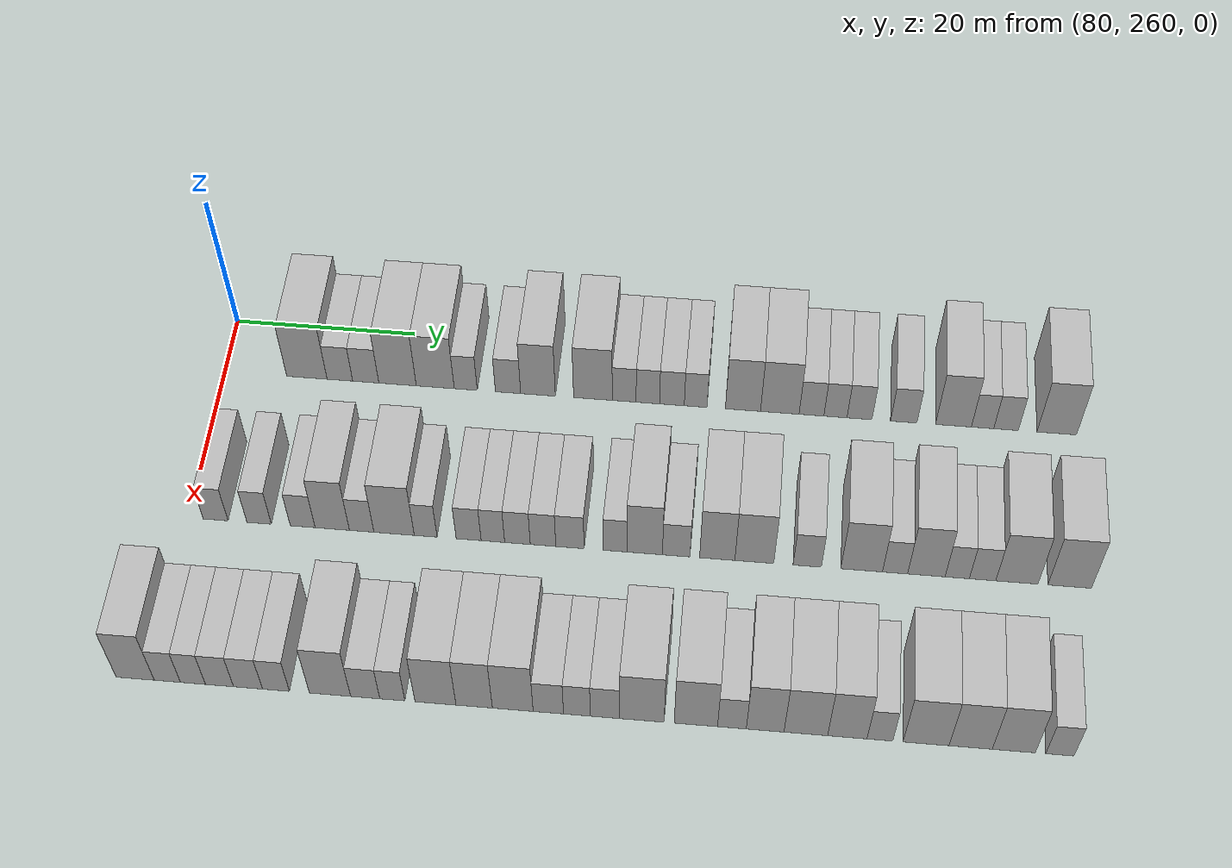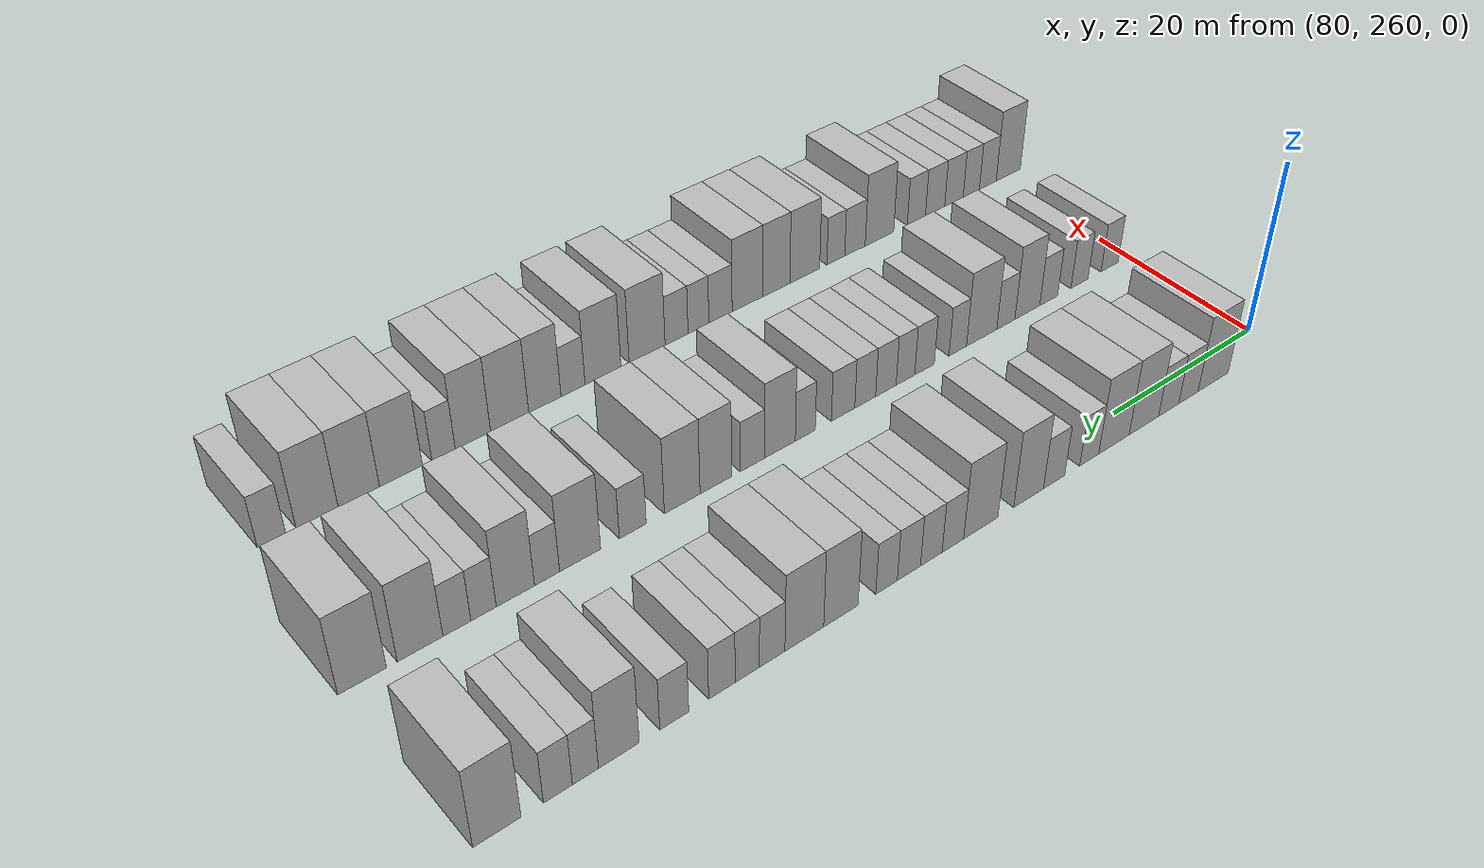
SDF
<sdf version="1.6">
 <world name="default">
  <model name="building_669">
   <static>1</static>
   <pose>82.0000 269.1235 0 0.000000 0.000000 0.000000</pose>
   <link name="link">
    <pose>0 0 4.50 0 0 0</pose>
    <collision name="collision"><geometry><box><size>10.0000 4.4842 9.0000</size></box></geometry></collision>
    <visual name="visual">
     <cast_shadows>0</cast_shadows>
     <geometry><box><size>10.0000 4.4842 9.0000</size></box></geometry>
     <material>
      <script>
       <uri>model://HANNAS_wall/materials/scripts</uri>
       <uri>model://HANNAS_wall/materials/textures</uri>
       <name>vrc/HANNAS_wall</name>
      </script>
     </material>
    </visual>
   </link>
  </model>
  <model name="building_670">
   <static>1</static>
   <pose>82.0000 272.7856 0 0.000000 0.000000 0.000000</pose>
   <link name="link">
    <pose>0 0 3.00 0 0 0</pose>
    <collision name="collision"><geometry><box><size>10.0000 2.8402 6.0000</size></box></geometry></collision>
    <visual name="visual">
     <cast_shadows>0</cast_shadows>
     <geometry><box><size>10.0000 2.8402 6.0000</size></box></geometry>
     <material>
      <script>
       <uri>model://HANNAS_wall/materials/scripts</uri>
       <uri>model://HANNAS_wall/materials/textures</uri>
       <name>vrc/HANNAS_wall</name>
      </script>
     </material>
    </visual>
   </link>
  </model>
  <model name="building_671">
   <static>1</static>
   <pose>82.0000 275.6551 0 0.000000 0.000000 0.000000</pose>
   <link name="link">
    <pose>0 0 3.00 0 0 0</pose>
    <collision name="collision"><geometry><box><size>10.0000 2.8987 6.0000</size></box></geometry></collision>
    <visual name="visual">
     <cast_shadows>0</cast_shadows>
     <geometry><box><size>10.0000 2.8987 6.0000</size></box></geometry>
     <material>
      <script>
       <uri>model://HANNAS_wall/materials/scripts</uri>
       <uri>model://HANNAS_wall/materials/textures</uri>
       <name>vrc/HANNAS_wall</name>
      </script>
     </material>
    </visual>
   </link>
  </model>
  <model name="building_672">
   <static>1</static>
   <pose>82.0000 279.1778 0 0.000000 0.000000 0.000000</pose>
   <link name="link">
    <pose>0 0 4.50 0 0 0</pose>
    <collision name="collision"><geometry><box><size>10.0000 4.1467 9.0000</size></box></geometry></collision>
    <visual name="visual">
     <cast_shadows>0</cast_shadows>
     <geometry><box><size>10.0000 4.1467 9.0000</size></box></geometry>
     <material>
      <script>
       <uri>model://HANNAS_wall/materials/scripts</uri>
       <uri>model://HANNAS_wall/materials/textures</uri>
       <name>vrc/HANNAS_wall</name>
      </script>
     </material>
    </visual>
   </link>
  </model>
  <model name="building_673">
   <static>1</static>
   <pose>82.0000 283.3461 0 0.000000 0.000000 0.000000</pose>
   <link name="link">
    <pose>0 0 4.50 0 0 0</pose>
    <collision name="collision"><geometry><box><size>10.0000 4.1898 9.0000</size></box></geometry></collision>
    <visual name="visual">
     <cast_shadows>0</cast_shadows>
     <geometry><box><size>10.0000 4.1898 9.0000</size></box></geometry>
     <material>
      <script>
       <uri>model://HANNAS_wall/materials/scripts</uri>
       <uri>model://HANNAS_wall/materials/textures</uri>
       <name>vrc/HANNAS_wall</name>
      </script>
     </material>
    </visual>
   </link>
  </model>
  <model name="building_674">
   <static>1</static>
   <pose>82.0000 286.7124 0 0.000000 0.000000 0.000000</pose>
   <link name="link">
    <pose>0 0 3.00 0 0 0</pose>
    <collision name="collision"><geometry><box><size>10.0000 2.5428 6.0000</size></box></geometry></collision>
    <visual name="visual">
     <cast_shadows>0</cast_shadows>
     <geometry><box><size>10.0000 2.5428 6.0000</size></box></geometry>
     <material>
      <script>
       <uri>model://HANNAS_wall/materials/scripts</uri>
       <uri>model://HANNAS_wall/materials/textures</uri>
       <name>vrc/HANNAS_wall</name>
      </script>
     </material>
    </visual>
   </link>
  </model>
  <model name="building_675">
   <static>1</static>
   <pose>82.0000 291.3722 0 0.000000 0.000000 0.000000</pose>
   <link name="link">
    <pose>0 0 3.00 0 0 0</pose>
    <collision name="collision"><geometry><box><size>10.0000 2.7767 6.0000</size></box></geometry></collision>
    <visual name="visual">
     <cast_shadows>0</cast_shadows>
     <geometry><box><size>10.0000 2.7767 6.0000</size></box></geometry>
     <material>
      <script>
       <uri>model://HANNAS_wall/materials/scripts</uri>
       <uri>model://HANNAS_wall/materials/textures</uri>
       <name>vrc/HANNAS_wall</name>
      </script>
     </material>
    </visual>
   </link>
  </model>
  <model name="building_676">
   <static>1</static>
   <pose>82.0000 294.6654 0 0.000000 0.000000 0.000000</pose>
   <link name="link">
    <pose>0 0 4.50 0 0 0</pose>
    <collision name="collision"><geometry><box><size>10.0000 3.8097 9.0000</size></box></geometry></collision>
    <visual name="visual">
     <cast_shadows>0</cast_shadows>
     <geometry><box><size>10.0000 3.8097 9.0000</size></box></geometry>
     <material>
      <script>
       <uri>model://HANNAS_wall/materials/scripts</uri>
       <uri>model://HANNAS_wall/materials/textures</uri>
       <name>vrc/HANNAS_wall</name>
      </script>
     </material>
    </visual>
   </link>
  </model>
  <model name="building_677">
   <static>1</static>
   <pose>82.0000 300.6858 0 0.000000 0.000000 0.000000</pose>
   <link name="link">
    <pose>0 0 4.50 0 0 0</pose>
    <collision name="collision"><geometry><box><size>10.0000 4.2310 9.0000</size></box></geometry></collision>
    <visual name="visual">
     <cast_shadows>0</cast_shadows>
     <geometry><box><size>10.0000 4.2310 9.0000</size></box></geometry>
     <material>
      <script>
       <uri>model://HANNAS_wall/materials/scripts</uri>
       <uri>model://HANNAS_wall/materials/textures</uri>
       <name>vrc/HANNAS_wall</name>
      </script>
     </material>
    </visual>
   </link>
  </model>
  <model name="building_678">
   <static>1</static>
   <pose>82.0000 304.1033 0 0.000000 0.000000 0.000000</pose>
   <link name="link">
    <pose>0 0 3.00 0 0 0</pose>
    <collision name="collision"><geometry><box><size>10.0000 2.6039 6.0000</size></box></geometry></collision>
    <visual name="visual">
     <cast_shadows>0</cast_shadows>
     <geometry><box><size>10.0000 2.6039 6.0000</size></box></geometry>
     <material>
      <script>
       <uri>model://HANNAS_wall/materials/scripts</uri>
       <uri>model://HANNAS_wall/materials/textures</uri>
       <name>vrc/HANNAS_wall</name>
      </script>
     </material>
    </visual>
   </link>
  </model>
  <model name="building_679">
   <static>1</static>
   <pose>82.0000 306.6870 0 0.000000 0.000000 0.000000</pose>
   <link name="link">
    <pose>0 0 3.00 0 0 0</pose>
    <collision name="collision"><geometry><box><size>10.0000 2.5635 6.0000</size></box></geometry></collision>
    <visual name="visual">
     <cast_shadows>0</cast_shadows>
     <geometry><box><size>10.0000 2.5635 6.0000</size></box></geometry>
     <material>
      <script>
       <uri>model://HANNAS_wall/materials/scripts</uri>
       <uri>model://HANNAS_wall/materials/textures</uri>
       <name>vrc/HANNAS_wall</name>
      </script>
     </material>
    </visual>
   </link>
  </model>
  <model name="building_680">
   <static>1</static>
   <pose>82.0000 309.3197 0 0.000000 0.000000 0.000000</pose>
   <link name="link">
    <pose>0 0 3.00 0 0 0</pose>
    <collision name="collision"><geometry><box><size>10.0000 2.7020 6.0000</size></box></geometry></collision>
    <visual name="visual">
     <cast_shadows>0</cast_shadows>
     <geometry><box><size>10.0000 2.7020 6.0000</size></box></geometry>
     <material>
      <script>
       <uri>model://HANNAS_wall/materials/scripts</uri>
       <uri>model://HANNAS_wall/materials/textures</uri>
       <name>vrc/HANNAS_wall</name>
      </script>
     </material>
    </visual>
   </link>
  </model>
  <model name="building_681">
   <static>1</static>
   <pose>82.0000 311.9095 0 0.000000 0.000000 0.000000</pose>
   <link name="link">
    <pose>0 0 3.00 0 0 0</pose>
    <collision name="collision"><geometry><box><size>10.0000 2.4776 6.0000</size></box></geometry></collision>
    <visual name="visual">
     <cast_shadows>0</cast_shadows>
     <geometry><box><size>10.0000 2.4776 6.0000</size></box></geometry>
     <material>
      <script>
       <uri>model://HANNAS_wall/materials/scripts</uri>
       <uri>model://HANNAS_wall/materials/textures</uri>
       <name>vrc/HANNAS_wall</name>
      </script>
     </material>
    </visual>
   </link>
  </model>
  <model name="building_682">
   <static>1</static>
   <pose>82.0000 317.0547 0 0.000000 0.000000 0.000000</pose>
   <link name="link">
    <pose>0 0 4.50 0 0 0</pose>
    <collision name="collision"><geometry><box><size>10.0000 3.8129 9.0000</size></box></geometry></collision>
    <visual name="visual">
     <cast_shadows>0</cast_shadows>
     <geometry><box><size>10.0000 3.8129 9.0000</size></box></geometry>
     <material>
      <script>
       <uri>model://HANNAS_wall/materials/scripts</uri>
       <uri>model://HANNAS_wall/materials/textures</uri>
       <name>vrc/HANNAS_wall</name>
      </script>
     </material>
    </visual>
   </link>
  </model>
  <model name="building_683">
   <static>1</static>
   <pose>82.0000 321.0560 0 0.000000 0.000000 0.000000</pose>
   <link name="link">
    <pose>0 0 4.50 0 0 0</pose>
    <collision name="collision"><geometry><box><size>10.0000 4.1897 9.0000</size></box></geometry></collision>
    <visual name="visual">
     <cast_shadows>0</cast_shadows>
     <geometry><box><size>10.0000 4.1897 9.0000</size></box></geometry>
     <material>
      <script>
       <uri>model://HANNAS_wall/materials/scripts</uri>
       <uri>model://HANNAS_wall/materials/textures</uri>
       <name>vrc/HANNAS_wall</name>
      </script>
     </material>
    </visual>
   </link>
  </model>
  <model name="building_684">
   <static>1</static>
   <pose>82.0000 324.4960 0 0.000000 0.000000 0.000000</pose>
   <link name="link">
    <pose>0 0 3.00 0 0 0</pose>
    <collision name="collision"><geometry><box><size>10.0000 2.6903 6.0000</size></box></geometry></collision>
    <visual name="visual">
     <cast_shadows>0</cast_shadows>
     <geometry><box><size>10.0000 2.6903 6.0000</size></box></geometry>
     <material>
      <script>
       <uri>model://HANNAS_wall/materials/scripts</uri>
       <uri>model://HANNAS_wall/materials/textures</uri>
       <name>vrc/HANNAS_wall</name>
      </script>
     </material>
    </visual>
   </link>
  </model>
  <model name="building_685">
   <static>1</static>
   <pose>82.0000 327.0920 0 0.000000 0.000000 0.000000</pose>
   <link name="link">
    <pose>0 0 3.00 0 0 0</pose>
    <collision name="collision"><geometry><box><size>10.0000 2.5016 6.0000</size></box></geometry></collision>
    <visual name="visual">
     <cast_shadows>0</cast_shadows>
     <geometry><box><size>10.0000 2.5016 6.0000</size></box></geometry>
     <material>
      <script>
       <uri>model://HANNAS_wall/materials/scripts</uri>
       <uri>model://HANNAS_wall/materials/textures</uri>
       <name>vrc/HANNAS_wall</name>
      </script>
     </material>
    </visual>
   </link>
  </model>
  <model name="building_686">
   <static>1</static>
   <pose>82.0000 329.6936 0 0.000000 0.000000 0.000000</pose>
   <link name="link">
    <pose>0 0 3.00 0 0 0</pose>
    <collision name="collision"><geometry><box><size>10.0000 2.7017 6.0000</size></box></geometry></collision>
    <visual name="visual">
     <cast_shadows>0</cast_shadows>
     <geometry><box><size>10.0000 2.7017 6.0000</size></box></geometry>
     <material>
      <script>
       <uri>model://HANNAS_wall/materials/scripts</uri>
       <uri>model://HANNAS_wall/materials/textures</uri>
       <name>vrc/HANNAS_wall</name>
      </script>
     </material>
    </visual>
   </link>
  </model>
  <model name="building_687">
   <static>1</static>
   <pose>82.0000 334.4649 0 0.000000 0.000000 0.000000</pose>
   <link name="link">
    <pose>0 0 3.00 0 0 0</pose>
    <collision name="collision"><geometry><box><size>10.0000 2.8408 6.0000</size></box></geometry></collision>
    <visual name="visual">
     <cast_shadows>0</cast_shadows>
     <geometry><box><size>10.0000 2.8408 6.0000</size></box></geometry>
     <material>
      <script>
       <uri>model://HANNAS_wall/materials/scripts</uri>
       <uri>model://HANNAS_wall/materials/textures</uri>
       <name>vrc/HANNAS_wall</name>
      </script>
     </material>
    </visual>
   </link>
  </model>
  <model name="building_688">
   <static>1</static>
   <pose>82.0000 339.8174 0 0.000000 0.000000 0.000000</pose>
   <link name="link">
    <pose>0 0 4.50 0 0 0</pose>
    <collision name="collision"><geometry><box><size>10.0000 3.8641 9.0000</size></box></geometry></collision>
    <visual name="visual">
     <cast_shadows>0</cast_shadows>
     <geometry><box><size>10.0000 3.8641 9.0000</size></box></geometry>
     <material>
      <script>
       <uri>model://HANNAS_wall/materials/scripts</uri>
       <uri>model://HANNAS_wall/materials/textures</uri>
       <name>vrc/HANNAS_wall</name>
      </script>
     </material>
    </visual>
   </link>
  </model>
  <model name="building_689">
   <static>1</static>
   <pose>82.0000 342.9503 0 0.000000 0.000000 0.000000</pose>
   <link name="link">
    <pose>0 0 3.00 0 0 0</pose>
    <collision name="collision"><geometry><box><size>10.0000 2.4017 6.0000</size></box></geometry></collision>
    <visual name="visual">
     <cast_shadows>0</cast_shadows>
     <geometry><box><size>10.0000 2.4017 6.0000</size></box></geometry>
     <material>
      <script>
       <uri>model://HANNAS_wall/materials/scripts</uri>
       <uri>model://HANNAS_wall/materials/textures</uri>
       <name>vrc/HANNAS_wall</name>
      </script>
     </material>
    </visual>
   </link>
  </model>
  <model name="building_690">
   <static>1</static>
   <pose>82.0000 345.4697 0 0.000000 0.000000 0.000000</pose>
   <link name="link">
    <pose>0 0 3.00 0 0 0</pose>
    <collision name="collision"><geometry><box><size>10.0000 2.6372 6.0000</size></box></geometry></collision>
    <visual name="visual">
     <cast_shadows>0</cast_shadows>
     <geometry><box><size>10.0000 2.6372 6.0000</size></box></geometry>
     <material>
      <script>
       <uri>model://HANNAS_wall/materials/scripts</uri>
       <uri>model://HANNAS_wall/materials/textures</uri>
       <name>vrc/HANNAS_wall</name>
      </script>
     </material>
    </visual>
   </link>
  </model>
  <model name="building_691">
   <static>1</static>
   <pose>82.0000 350.9074 0 0.000000 0.000000 0.000000</pose>
   <link name="link">
    <pose>0 0 4.50 0 0 0</pose>
    <collision name="collision"><geometry><box><size>10.0000 4.2383 9.0000</size></box></geometry></collision>
    <visual name="visual">
     <cast_shadows>0</cast_shadows>
     <geometry><box><size>10.0000 4.2383 9.0000</size></box></geometry>
     <material>
      <script>
       <uri>model://HANNAS_wall/materials/scripts</uri>
       <uri>model://HANNAS_wall/materials/textures</uri>
       <name>vrc/HANNAS_wall</name>
      </script>
     </material>
    </visual>
   </link>
  </model>
  <model name="building_840">
   <static>1</static>
   <pose>101.0000 262.8969 0 0.000000 0.000000 0.000000</pose>
   <link name="link">
    <pose>0 0 3.00 0 0 0</pose>
    <collision name="collision"><geometry><box><size>10.0000 2.6389 6.0000</size></box></geometry></collision>
    <visual name="visual">
     <cast_shadows>0</cast_shadows>
     <geometry><box><size>10.0000 2.6389 6.0000</size></box></geometry>
     <material>
      <script>
       <uri>model://HANNAS_wall/materials/scripts</uri>
       <uri>model://HANNAS_wall/materials/textures</uri>
       <name>vrc/HANNAS_wall</name>
      </script>
     </material>
    </visual>
   </link>
  </model>
  <model name="building_841">
   <static>1</static>
   <pose>101.0000 267.5106 0 0.000000 0.000000 0.000000</pose>
   <link name="link">
    <pose>0 0 3.00 0 0 0</pose>
    <collision name="collision"><geometry><box><size>10.0000 2.5886 6.0000</size></box></geometry></collision>
    <visual name="visual">
     <cast_shadows>0</cast_shadows>
     <geometry><box><size>10.0000 2.5886 6.0000</size></box></geometry>
     <material>
      <script>
       <uri>model://HANNAS_wall/materials/scripts</uri>
       <uri>model://HANNAS_wall/materials/textures</uri>
       <name>vrc/HANNAS_wall</name>
      </script>
     </material>
    </visual>
   </link>
  </model>
  <model name="building_842">
   <static>1</static>
   <pose>101.0000 272.1229 0 0.000000 0.000000 0.000000</pose>
   <link name="link">
    <pose>0 0 3.00 0 0 0</pose>
    <collision name="collision"><geometry><box><size>10.0000 2.6360 6.0000</size></box></geometry></collision>
    <visual name="visual">
     <cast_shadows>0</cast_shadows>
     <geometry><box><size>10.0000 2.6360 6.0000</size></box></geometry>
     <material>
      <script>
       <uri>model://HANNAS_wall/materials/scripts</uri>
       <uri>model://HANNAS_wall/materials/textures</uri>
       <name>vrc/HANNAS_wall</name>
      </script>
     </material>
    </visual>
   </link>
  </model>
  <model name="building_843">
   <static>1</static>
   <pose>101.0000 275.2488 0 0.000000 0.000000 0.000000</pose>
   <link name="link">
    <pose>0 0 4.50 0 0 0</pose>
    <collision name="collision"><geometry><box><size>10.0000 3.6157 9.0000</size></box></geometry></collision>
    <visual name="visual">
     <cast_shadows>0</cast_shadows>
     <geometry><box><size>10.0000 3.6157 9.0000</size></box></geometry>
     <material>
      <script>
       <uri>model://HANNAS_wall/materials/scripts</uri>
       <uri>model://HANNAS_wall/materials/textures</uri>
       <name>vrc/HANNAS_wall</name>
      </script>
     </material>
    </visual>
   </link>
  </model>
  <model name="building_844">
   <static>1</static>
   <pose>101.0000 278.3425 0 0.000000 0.000000 0.000000</pose>
   <link name="link">
    <pose>0 0 3.00 0 0 0</pose>
    <collision name="collision"><geometry><box><size>10.0000 2.5719 6.0000</size></box></geometry></collision>
    <visual name="visual">
     <cast_shadows>0</cast_shadows>
     <geometry><box><size>10.0000 2.5719 6.0000</size></box></geometry>
     <material>
      <script>
       <uri>model://HANNAS_wall/materials/scripts</uri>
       <uri>model://HANNAS_wall/materials/textures</uri>
       <name>vrc/HANNAS_wall</name>
      </script>
     </material>
    </visual>
   </link>
  </model>
  <model name="building_845">
   <static>1</static>
   <pose>101.0000 281.7511 0 0.000000 0.000000 0.000000</pose>
   <link name="link">
    <pose>0 0 4.50 0 0 0</pose>
    <collision name="collision"><geometry><box><size>10.0000 4.2452 9.0000</size></box></geometry></collision>
    <visual name="visual">
     <cast_shadows>0</cast_shadows>
     <geometry><box><size>10.0000 4.2452 9.0000</size></box></geometry>
     <material>
      <script>
       <uri>model://HANNAS_wall/materials/scripts</uri>
       <uri>model://HANNAS_wall/materials/textures</uri>
       <name>vrc/HANNAS_wall</name>
      </script>
     </material>
    </visual>
   </link>
  </model>
  <model name="building_846">
   <static>1</static>
   <pose>101.0000 285.0741 0 0.000000 0.000000 0.000000</pose>
   <link name="link">
    <pose>0 0 3.00 0 0 0</pose>
    <collision name="collision"><geometry><box><size>10.0000 2.4008 6.0000</size></box></geometry></collision>
    <visual name="visual">
     <cast_shadows>0</cast_shadows>
     <geometry><box><size>10.0000 2.4008 6.0000</size></box></geometry>
     <material>
      <script>
       <uri>model://HANNAS_wall/materials/scripts</uri>
       <uri>model://HANNAS_wall/materials/textures</uri>
       <name>vrc/HANNAS_wall</name>
      </script>
     </material>
    </visual>
   </link>
  </model>
  <model name="building_847">
   <static>1</static>
   <pose>101.0000 289.5842 0 0.000000 0.000000 0.000000</pose>
   <link name="link">
    <pose>0 0 3.00 0 0 0</pose>
    <collision name="collision"><geometry><box><size>10.0000 2.6195 6.0000</size></box></geometry></collision>
    <visual name="visual">
     <cast_shadows>0</cast_shadows>
     <geometry><box><size>10.0000 2.6195 6.0000</size></box></geometry>
     <material>
      <script>
       <uri>model://HANNAS_wall/materials/scripts</uri>
       <uri>model://HANNAS_wall/materials/textures</uri>
       <name>vrc/HANNAS_wall</name>
      </script>
     </material>
    </visual>
   </link>
  </model>
  <model name="building_848">
   <static>1</static>
   <pose>101.0000 292.1223 0 0.000000 0.000000 0.000000</pose>
   <link name="link">
    <pose>0 0 3.00 0 0 0</pose>
    <collision name="collision"><geometry><box><size>10.0000 2.4567 6.0000</size></box></geometry></collision>
    <visual name="visual">
     <cast_shadows>0</cast_shadows>
     <geometry><box><size>10.0000 2.4567 6.0000</size></box></geometry>
     <material>
      <script>
       <uri>model://HANNAS_wall/materials/scripts</uri>
       <uri>model://HANNAS_wall/materials/textures</uri>
       <name>vrc/HANNAS_wall</name>
      </script>
     </material>
    </visual>
   </link>
  </model>
  <model name="building_849">
   <static>1</static>
   <pose>101.0000 294.6892 0 0.000000 0.000000 0.000000</pose>
   <link name="link">
    <pose>0 0 3.00 0 0 0</pose>
    <collision name="collision"><geometry><box><size>10.0000 2.6772 6.0000</size></box></geometry></collision>
    <visual name="visual">
     <cast_shadows>0</cast_shadows>
     <geometry><box><size>10.0000 2.6772 6.0000</size></box></geometry>
     <material>
      <script>
       <uri>model://HANNAS_wall/materials/scripts</uri>
       <uri>model://HANNAS_wall/materials/textures</uri>
       <name>vrc/HANNAS_wall</name>
      </script>
     </material>
    </visual>
   </link>
  </model>
  <model name="building_850">
   <static>1</static>
   <pose>101.0000 297.3610 0 0.000000 0.000000 0.000000</pose>
   <link name="link">
    <pose>0 0 3.00 0 0 0</pose>
    <collision name="collision"><geometry><box><size>10.0000 2.6664 6.0000</size></box></geometry></collision>
    <visual name="visual">
     <cast_shadows>0</cast_shadows>
     <geometry><box><size>10.0000 2.6664 6.0000</size></box></geometry>
     <material>
      <script>
       <uri>model://HANNAS_wall/materials/scripts</uri>
       <uri>model://HANNAS_wall/materials/textures</uri>
       <name>vrc/HANNAS_wall</name>
      </script>
     </material>
    </visual>
   </link>
  </model>
  <model name="building_851">
   <static>1</static>
   <pose>101.0000 300.1699 0 0.000000 0.000000 0.000000</pose>
   <link name="link">
    <pose>0 0 3.00 0 0 0</pose>
    <collision name="collision"><geometry><box><size>10.0000 2.9514 6.0000</size></box></geometry></collision>
    <visual name="visual">
     <cast_shadows>0</cast_shadows>
     <geometry><box><size>10.0000 2.9514 6.0000</size></box></geometry>
     <material>
      <script>
       <uri>model://HANNAS_wall/materials/scripts</uri>
       <uri>model://HANNAS_wall/materials/textures</uri>
       <name>vrc/HANNAS_wall</name>
      </script>
     </material>
    </visual>
   </link>
  </model>
  <model name="building_852">
   <static>1</static>
   <pose>101.0000 304.8644 0 0.000000 0.000000 0.000000</pose>
   <link name="link">
    <pose>0 0 3.00 0 0 0</pose>
    <collision name="collision"><geometry><box><size>10.0000 2.4377 6.0000</size></box></geometry></collision>
    <visual name="visual">
     <cast_shadows>0</cast_shadows>
     <geometry><box><size>10.0000 2.4377 6.0000</size></box></geometry>
     <material>
      <script>
       <uri>model://HANNAS_wall/materials/scripts</uri>
       <uri>model://HANNAS_wall/materials/textures</uri>
       <name>vrc/HANNAS_wall</name>
      </script>
     </material>
    </visual>
   </link>
  </model>
  <model name="building_853">
   <static>1</static>
   <pose>101.0000 307.9319 0 0.000000 0.000000 0.000000</pose>
   <link name="link">
    <pose>0 0 4.50 0 0 0</pose>
    <collision name="collision"><geometry><box><size>10.0000 3.6973 9.0000</size></box></geometry></collision>
    <visual name="visual">
     <cast_shadows>0</cast_shadows>
     <geometry><box><size>10.0000 3.6973 9.0000</size></box></geometry>
     <material>
      <script>
       <uri>model://HANNAS_wall/materials/scripts</uri>
       <uri>model://HANNAS_wall/materials/textures</uri>
       <name>vrc/HANNAS_wall</name>
      </script>
     </material>
    </visual>
   </link>
  </model>
  <model name="building_854">
   <static>1</static>
   <pose>101.0000 311.2086 0 0.000000 0.000000 0.000000</pose>
   <link name="link">
    <pose>0 0 3.00 0 0 0</pose>
    <collision name="collision"><geometry><box><size>10.0000 2.8560 6.0000</size></box></geometry></collision>
    <visual name="visual">
     <cast_shadows>0</cast_shadows>
     <geometry><box><size>10.0000 2.8560 6.0000</size></box></geometry>
     <material>
      <script>
       <uri>model://HANNAS_wall/materials/scripts</uri>
       <uri>model://HANNAS_wall/materials/textures</uri>
       <name>vrc/HANNAS_wall</name>
      </script>
     </material>
    </visual>
   </link>
  </model>
  <model name="building_855">
   <static>1</static>
   <pose>101.0000 315.4592 0 0.000000 0.000000 0.000000</pose>
   <link name="link">
    <pose>0 0 4.50 0 0 0</pose>
    <collision name="collision"><geometry><box><size>10.0000 3.6451 9.0000</size></box></geometry></collision>
    <visual name="visual">
     <cast_shadows>0</cast_shadows>
     <geometry><box><size>10.0000 3.6451 9.0000</size></box></geometry>
     <material>
      <script>
       <uri>model://HANNAS_wall/materials/scripts</uri>
       <uri>model://HANNAS_wall/materials/textures</uri>
       <name>vrc/HANNAS_wall</name>
      </script>
     </material>
    </visual>
   </link>
  </model>
  <model name="building_856">
   <static>1</static>
   <pose>101.0000 319.2860 0 0.000000 0.000000 0.000000</pose>
   <link name="link">
    <pose>0 0 4.50 0 0 0</pose>
    <collision name="collision"><geometry><box><size>10.0000 4.0086 9.0000</size></box></geometry></collision>
    <visual name="visual">
     <cast_shadows>0</cast_shadows>
     <geometry><box><size>10.0000 4.0086 9.0000</size></box></geometry>
     <material>
      <script>
       <uri>model://HANNAS_wall/materials/scripts</uri>
       <uri>model://HANNAS_wall/materials/textures</uri>
       <name>vrc/HANNAS_wall</name>
      </script>
     </material>
    </visual>
   </link>
  </model>
  <model name="building_857">
   <static>1</static>
   <pose>101.0000 324.7450 0 0.000000 0.000000 0.000000</pose>
   <link name="link">
    <pose>0 0 3.00 0 0 0</pose>
    <collision name="collision"><geometry><box><size>10.0000 2.9094 6.0000</size></box></geometry></collision>
    <visual name="visual">
     <cast_shadows>0</cast_shadows>
     <geometry><box><size>10.0000 2.9094 6.0000</size></box></geometry>
     <material>
      <script>
       <uri>model://HANNAS_wall/materials/scripts</uri>
       <uri>model://HANNAS_wall/materials/textures</uri>
       <name>vrc/HANNAS_wall</name>
      </script>
     </material>
    </visual>
   </link>
  </model>
  <model name="building_858">
   <static>1</static>
   <pose>101.0000 330.3419 0 0.000000 0.000000 0.000000</pose>
   <link name="link">
    <pose>0 0 4.50 0 0 0</pose>
    <collision name="collision"><geometry><box><size>10.0000 4.2845 9.0000</size></box></geometry></collision>
    <visual name="visual">
     <cast_shadows>0</cast_shadows>
     <geometry><box><size>10.0000 4.2845 9.0000</size></box></geometry>
     <material>
      <script>
       <uri>model://HANNAS_wall/materials/scripts</uri>
       <uri>model://HANNAS_wall/materials/textures</uri>
       <name>vrc/HANNAS_wall</name>
      </script>
     </material>
    </visual>
   </link>
  </model>
  <model name="building_859">
   <static>1</static>
   <pose>101.0000 333.7696 0 0.000000 0.000000 0.000000</pose>
   <link name="link">
    <pose>0 0 3.00 0 0 0</pose>
    <collision name="collision"><geometry><box><size>10.0000 2.5708 6.0000</size></box></geometry></collision>
    <visual name="visual">
     <cast_shadows>0</cast_shadows>
     <geometry><box><size>10.0000 2.5708 6.0000</size></box></geometry>
     <material>
      <script>
       <uri>model://HANNAS_wall/materials/scripts</uri>
       <uri>model://HANNAS_wall/materials/textures</uri>
       <name>vrc/HANNAS_wall</name>
      </script>
     </material>
    </visual>
   </link>
  </model>
  <model name="building_860">
   <static>1</static>
   <pose>101.0000 336.9754 0 0.000000 0.000000 0.000000</pose>
   <link name="link">
    <pose>0 0 4.50 0 0 0</pose>
    <collision name="collision"><geometry><box><size>10.0000 3.8407 9.0000</size></box></geometry></collision>
    <visual name="visual">
     <cast_shadows>0</cast_shadows>
     <geometry><box><size>10.0000 3.8407 9.0000</size></box></geometry>
     <material>
      <script>
       <uri>model://HANNAS_wall/materials/scripts</uri>
       <uri>model://HANNAS_wall/materials/textures</uri>
       <name>vrc/HANNAS_wall</name>
      </script>
     </material>
    </visual>
   </link>
  </model>
  <model name="building_861">
   <static>1</static>
   <pose>101.0000 340.1360 0 0.000000 0.000000 0.000000</pose>
   <link name="link">
    <pose>0 0 3.00 0 0 0</pose>
    <collision name="collision"><geometry><box><size>10.0000 2.4805 6.0000</size></box></geometry></collision>
    <visual name="visual">
     <cast_shadows>0</cast_shadows>
     <geometry><box><size>10.0000 2.4805 6.0000</size></box></geometry>
     <material>
      <script>
       <uri>model://HANNAS_wall/materials/scripts</uri>
       <uri>model://HANNAS_wall/materials/textures</uri>
       <name>vrc/HANNAS_wall</name>
      </script>
     </material>
    </visual>
   </link>
  </model>
  <model name="building_862">
   <static>1</static>
   <pose>101.0000 342.7255 0 0.000000 0.000000 0.000000</pose>
   <link name="link">
    <pose>0 0 3.00 0 0 0</pose>
    <collision name="collision"><geometry><box><size>10.0000 2.6985 6.0000</size></box></geometry></collision>
    <visual name="visual">
     <cast_shadows>0</cast_shadows>
     <geometry><box><size>10.0000 2.6985 6.0000</size></box></geometry>
     <material>
      <script>
       <uri>model://HANNAS_wall/materials/scripts</uri>
       <uri>model://HANNAS_wall/materials/textures</uri>
       <name>vrc/HANNAS_wall</name>
      </script>
     </material>
    </visual>
   </link>
  </model>
  <model name="building_863">
   <static>1</static>
   <pose>101.0000 346.2275 0 0.000000 0.000000 0.000000</pose>
   <link name="link">
    <pose>0 0 4.50 0 0 0</pose>
    <collision name="collision"><geometry><box><size>10.0000 4.3056 9.0000</size></box></geometry></collision>
    <visual name="visual">
     <cast_shadows>0</cast_shadows>
     <geometry><box><size>10.0000 4.3056 9.0000</size></box></geometry>
     <material>
      <script>
       <uri>model://HANNAS_wall/materials/scripts</uri>
       <uri>model://HANNAS_wall/materials/textures</uri>
       <name>vrc/HANNAS_wall</name>
      </script>
     </material>
    </visual>
   </link>
  </model>
  <model name="building_864">
   <static>1</static>
   <pose>101.0000 351.5990 0 0.000000 0.000000 0.000000</pose>
   <link name="link">
    <pose>0 0 4.50 0 0 0</pose>
    <collision name="collision"><geometry><box><size>10.0000 4.4373 9.0000</size></box></geometry></collision>
    <visual name="visual">
     <cast_shadows>0</cast_shadows>
     <geometry><box><size>10.0000 4.4373 9.0000</size></box></geometry>
     <material>
      <script>
       <uri>model://HANNAS_wall/materials/scripts</uri>
       <uri>model://HANNAS_wall/materials/textures</uri>
       <name>vrc/HANNAS_wall</name>
      </script>
     </material>
    </visual>
   </link>
  </model>
  <model name="building_1011">
   <static>1</static>
   <pose>120.0000 258.7320 0 0.000000 0.000000 0.000000</pose>
   <link name="link">
    <pose>0 0 4.50 0 0 0</pose>
    <collision name="collision"><geometry><box><size>10.0000 3.8497 9.0000</size></box></geometry></collision>
    <visual name="visual">
     <cast_shadows>0</cast_shadows>
     <geometry><box><size>10.0000 3.8497 9.0000</size></box></geometry>
     <material>
      <script>
       <uri>model://HANNAS_wall/materials/scripts</uri>
       <uri>model://HANNAS_wall/materials/textures</uri>
       <name>vrc/HANNAS_wall</name>
      </script>
     </material>
    </visual>
   </link>
  </model>
  <model name="building_1012">
   <static>1</static>
   <pose>120.0000 261.9792 0 0.000000 0.000000 0.000000</pose>
   <link name="link">
    <pose>0 0 3.00 0 0 0</pose>
    <collision name="collision"><geometry><box><size>10.0000 2.6447 6.0000</size></box></geometry></collision>
    <visual name="visual">
     <cast_shadows>0</cast_shadows>
     <geometry><box><size>10.0000 2.6447 6.0000</size></box></geometry>
     <material>
      <script>
       <uri>model://HANNAS_wall/materials/scripts</uri>
       <uri>model://HANNAS_wall/materials/textures</uri>
       <name>vrc/HANNAS_wall</name>
      </script>
     </material>
    </visual>
   </link>
  </model>
  <model name="building_1013">
   <static>1</static>
   <pose>120.0000 264.5588 0 0.000000 0.000000 0.000000</pose>
   <link name="link">
    <pose>0 0 3.00 0 0 0</pose>
    <collision name="collision"><geometry><box><size>10.0000 2.5146 6.0000</size></box></geometry></collision>
    <visual name="visual">
     <cast_shadows>0</cast_shadows>
     <geometry><box><size>10.0000 2.5146 6.0000</size></box></geometry>
     <material>
      <script>
       <uri>model://HANNAS_wall/materials/scripts</uri>
       <uri>model://HANNAS_wall/materials/textures</uri>
       <name>vrc/HANNAS_wall</name>
      </script>
     </material>
    </visual>
   </link>
  </model>
  <model name="building_1014">
   <static>1</static>
   <pose>120.0000 267.2319 0 0.000000 0.000000 0.000000</pose>
   <link name="link">
    <pose>0 0 3.00 0 0 0</pose>
    <collision name="collision"><geometry><box><size>10.0000 2.8316 6.0000</size></box></geometry></collision>
    <visual name="visual">
     <cast_shadows>0</cast_shadows>
     <geometry><box><size>10.0000 2.8316 6.0000</size></box></geometry>
     <material>
      <script>
       <uri>model://HANNAS_wall/materials/scripts</uri>
       <uri>model://HANNAS_wall/materials/textures</uri>
       <name>vrc/HANNAS_wall</name>
      </script>
     </material>
    </visual>
   </link>
  </model>
  <model name="building_1015">
   <static>1</static>
   <pose>120.0000 270.0990 0 0.000000 0.000000 0.000000</pose>
   <link name="link">
    <pose>0 0 3.00 0 0 0</pose>
    <collision name="collision"><geometry><box><size>10.0000 2.9025 6.0000</size></box></geometry></collision>
    <visual name="visual">
     <cast_shadows>0</cast_shadows>
     <geometry><box><size>10.0000 2.9025 6.0000</size></box></geometry>
     <material>
      <script>
       <uri>model://HANNAS_wall/materials/scripts</uri>
       <uri>model://HANNAS_wall/materials/textures</uri>
       <name>vrc/HANNAS_wall</name>
      </script>
     </material>
    </visual>
   </link>
  </model>
  <model name="building_1016">
   <static>1</static>
   <pose>120.0000 272.9034 0 0.000000 0.000000 0.000000</pose>
   <link name="link">
    <pose>0 0 3.00 0 0 0</pose>
    <collision name="collision"><geometry><box><size>10.0000 2.7062 6.0000</size></box></geometry></collision>
    <visual name="visual">
     <cast_shadows>0</cast_shadows>
     <geometry><box><size>10.0000 2.7062 6.0000</size></box></geometry>
     <material>
      <script>
       <uri>model://HANNAS_wall/materials/scripts</uri>
       <uri>model://HANNAS_wall/materials/textures</uri>
       <name>vrc/HANNAS_wall</name>
      </script>
     </material>
    </visual>
   </link>
  </model>
  <model name="building_1017">
   <static>1</static>
   <pose>120.0000 278.3172 0 0.000000 0.000000 0.000000</pose>
   <link name="link">
    <pose>0 0 4.50 0 0 0</pose>
    <collision name="collision"><geometry><box><size>10.0000 4.1213 9.0000</size></box></geometry></collision>
    <visual name="visual">
     <cast_shadows>0</cast_shadows>
     <geometry><box><size>10.0000 4.1213 9.0000</size></box></geometry>
     <material>
      <script>
       <uri>model://HANNAS_wall/materials/scripts</uri>
       <uri>model://HANNAS_wall/materials/textures</uri>
       <name>vrc/HANNAS_wall</name>
      </script>
     </material>
    </visual>
   </link>
  </model>
  <model name="building_1018">
   <static>1</static>
   <pose>120.0000 281.8348 0 0.000000 0.000000 0.000000</pose>
   <link name="link">
    <pose>0 0 3.00 0 0 0</pose>
    <collision name="collision"><geometry><box><size>10.0000 2.9140 6.0000</size></box></geometry></collision>
    <visual name="visual">
     <cast_shadows>0</cast_shadows>
     <geometry><box><size>10.0000 2.9140 6.0000</size></box></geometry>
     <material>
      <script>
       <uri>model://HANNAS_wall/materials/scripts</uri>
       <uri>model://HANNAS_wall/materials/textures</uri>
       <name>vrc/HANNAS_wall</name>
      </script>
     </material>
    </visual>
   </link>
  </model>
  <model name="building_1019">
   <static>1</static>
   <pose>120.0000 284.5438 0 0.000000 0.000000 0.000000</pose>
   <link name="link">
    <pose>0 0 3.00 0 0 0</pose>
    <collision name="collision"><geometry><box><size>10.0000 2.5040 6.0000</size></box></geometry></collision>
    <visual name="visual">
     <cast_shadows>0</cast_shadows>
     <geometry><box><size>10.0000 2.5040 6.0000</size></box></geometry>
     <material>
      <script>
       <uri>model://HANNAS_wall/materials/scripts</uri>
       <uri>model://HANNAS_wall/materials/textures</uri>
       <name>vrc/HANNAS_wall</name>
      </script>
     </material>
    </visual>
   </link>
  </model>
  <model name="building_1020">
   <static>1</static>
   <pose>120.0000 288.8339 0 0.000000 0.000000 0.000000</pose>
   <link name="link">
    <pose>0 0 4.50 0 0 0</pose>
    <collision name="collision"><geometry><box><size>10.0000 4.0762 9.0000</size></box></geometry></collision>
    <visual name="visual">
     <cast_shadows>0</cast_shadows>
     <geometry><box><size>10.0000 4.0762 9.0000</size></box></geometry>
     <material>
      <script>
       <uri>model://HANNAS_wall/materials/scripts</uri>
       <uri>model://HANNAS_wall/materials/textures</uri>
       <name>vrc/HANNAS_wall</name>
      </script>
     </material>
    </visual>
   </link>
  </model>
  <model name="building_1021">
   <static>1</static>
   <pose>120.0000 292.6799 0 0.000000 0.000000 0.000000</pose>
   <link name="link">
    <pose>0 0 4.50 0 0 0</pose>
    <collision name="collision"><geometry><box><size>10.0000 3.6157 9.0000</size></box></geometry></collision>
    <visual name="visual">
     <cast_shadows>0</cast_shadows>
     <geometry><box><size>10.0000 3.6157 9.0000</size></box></geometry>
     <material>
      <script>
       <uri>model://HANNAS_wall/materials/scripts</uri>
       <uri>model://HANNAS_wall/materials/textures</uri>
       <name>vrc/HANNAS_wall</name>
      </script>
     </material>
    </visual>
   </link>
  </model>
  <model name="building_1022">
   <static>1</static>
   <pose>120.0000 296.5099 0 0.000000 0.000000 0.000000</pose>
   <link name="link">
    <pose>0 0 4.50 0 0 0</pose>
    <collision name="collision"><geometry><box><size>10.0000 4.0443 9.0000</size></box></geometry></collision>
    <visual name="visual">
     <cast_shadows>0</cast_shadows>
     <geometry><box><size>10.0000 4.0443 9.0000</size></box></geometry>
     <material>
      <script>
       <uri>model://HANNAS_wall/materials/scripts</uri>
       <uri>model://HANNAS_wall/materials/textures</uri>
       <name>vrc/HANNAS_wall</name>
      </script>
     </material>
    </visual>
   </link>
  </model>
  <model name="building_1023">
   <static>1</static>
   <pose>120.0000 300.0310 0 0.000000 0.000000 0.000000</pose>
   <link name="link">
    <pose>0 0 3.00 0 0 0</pose>
    <collision name="collision"><geometry><box><size>10.0000 2.9979 6.0000</size></box></geometry></collision>
    <visual name="visual">
     <cast_shadows>0</cast_shadows>
     <geometry><box><size>10.0000 2.9979 6.0000</size></box></geometry>
     <material>
      <script>
       <uri>model://HANNAS_wall/materials/scripts</uri>
       <uri>model://HANNAS_wall/materials/textures</uri>
       <name>vrc/HANNAS_wall</name>
      </script>
     </material>
    </visual>
   </link>
  </model>
  <model name="building_1024">
   <static>1</static>
   <pose>120.0000 302.8524 0 0.000000 0.000000 0.000000</pose>
   <link name="link">
    <pose>0 0 3.00 0 0 0</pose>
    <collision name="collision"><geometry><box><size>10.0000 2.6449 6.0000</size></box></geometry></collision>
    <visual name="visual">
     <cast_shadows>0</cast_shadows>
     <geometry><box><size>10.0000 2.6449 6.0000</size></box></geometry>
     <material>
      <script>
       <uri>model://HANNAS_wall/materials/scripts</uri>
       <uri>model://HANNAS_wall/materials/textures</uri>
       <name>vrc/HANNAS_wall</name>
      </script>
     </material>
    </visual>
   </link>
  </model>
  <model name="building_1025">
   <static>1</static>
   <pose>120.0000 305.6082 0 0.000000 0.000000 0.000000</pose>
   <link name="link">
    <pose>0 0 3.00 0 0 0</pose>
    <collision name="collision"><geometry><box><size>10.0000 2.8668 6.0000</size></box></geometry></collision>
    <visual name="visual">
     <cast_shadows>0</cast_shadows>
     <geometry><box><size>10.0000 2.8668 6.0000</size></box></geometry>
     <material>
      <script>
       <uri>model://HANNAS_wall/materials/scripts</uri>
       <uri>model://HANNAS_wall/materials/textures</uri>
       <name>vrc/HANNAS_wall</name>
      </script>
     </material>
    </visual>
   </link>
  </model>
  <model name="building_1026">
   <static>1</static>
   <pose>120.0000 309.2410 0 0.000000 0.000000 0.000000</pose>
   <link name="link">
    <pose>0 0 4.50 0 0 0</pose>
    <collision name="collision"><geometry><box><size>10.0000 4.3988 9.0000</size></box></geometry></collision>
    <visual name="visual">
     <cast_shadows>0</cast_shadows>
     <geometry><box><size>10.0000 4.3988 9.0000</size></box></geometry>
     <material>
      <script>
       <uri>model://HANNAS_wall/materials/scripts</uri>
       <uri>model://HANNAS_wall/materials/textures</uri>
       <name>vrc/HANNAS_wall</name>
      </script>
     </material>
    </visual>
   </link>
  </model>
  <model name="building_1027">
   <static>1</static>
   <pose>120.0000 314.5637 0 0.000000 0.000000 0.000000</pose>
   <link name="link">
    <pose>0 0 4.50 0 0 0</pose>
    <collision name="collision"><geometry><box><size>10.0000 4.2465 9.0000</size></box></geometry></collision>
    <visual name="visual">
     <cast_shadows>0</cast_shadows>
     <geometry><box><size>10.0000 4.2465 9.0000</size></box></geometry>
     <material>
      <script>
       <uri>model://HANNAS_wall/materials/scripts</uri>
       <uri>model://HANNAS_wall/materials/textures</uri>
       <name>vrc/HANNAS_wall</name>
      </script>
     </material>
    </visual>
   </link>
  </model>
  <model name="building_1028">
   <static>1</static>
   <pose>120.0000 318.0931 0 0.000000 0.000000 0.000000</pose>
   <link name="link">
    <pose>0 0 3.00 0 0 0</pose>
    <collision name="collision"><geometry><box><size>10.0000 2.8124 6.0000</size></box></geometry></collision>
    <visual name="visual">
     <cast_shadows>0</cast_shadows>
     <geometry><box><size>10.0000 2.8124 6.0000</size></box></geometry>
     <material>
      <script>
       <uri>model://HANNAS_wall/materials/scripts</uri>
       <uri>model://HANNAS_wall/materials/textures</uri>
       <name>vrc/HANNAS_wall</name>
      </script>
     </material>
    </visual>
   </link>
  </model>
  <model name="building_1029">
   <static>1</static>
   <pose>120.0000 321.3441 0 0.000000 0.000000 0.000000</pose>
   <link name="link">
    <pose>0 0 4.50 0 0 0</pose>
    <collision name="collision"><geometry><box><size>10.0000 3.6896 9.0000</size></box></geometry></collision>
    <visual name="visual">
     <cast_shadows>0</cast_shadows>
     <geometry><box><size>10.0000 3.6896 9.0000</size></box></geometry>
     <material>
      <script>
       <uri>model://HANNAS_wall/materials/scripts</uri>
       <uri>model://HANNAS_wall/materials/textures</uri>
       <name>vrc/HANNAS_wall</name>
      </script>
     </material>
    </visual>
   </link>
  </model>
  <model name="building_1030">
   <static>1</static>
   <pose>120.0000 325.3177 0 0.000000 0.000000 0.000000</pose>
   <link name="link">
    <pose>0 0 4.50 0 0 0</pose>
    <collision name="collision"><geometry><box><size>10.0000 4.2576 9.0000</size></box></geometry></collision>
    <visual name="visual">
     <cast_shadows>0</cast_shadows>
     <geometry><box><size>10.0000 4.2576 9.0000</size></box></geometry>
     <material>
      <script>
       <uri>model://HANNAS_wall/materials/scripts</uri>
       <uri>model://HANNAS_wall/materials/textures</uri>
       <name>vrc/HANNAS_wall</name>
      </script>
     </material>
    </visual>
   </link>
  </model>
  <model name="building_1031">
   <static>1</static>
   <pose>120.0000 329.3668 0 0.000000 0.000000 0.000000</pose>
   <link name="link">
    <pose>0 0 4.50 0 0 0</pose>
    <collision name="collision"><geometry><box><size>10.0000 3.8406 9.0000</size></box></geometry></collision>
    <visual name="visual">
     <cast_shadows>0</cast_shadows>
     <geometry><box><size>10.0000 3.8406 9.0000</size></box></geometry>
     <material>
      <script>
       <uri>model://HANNAS_wall/materials/scripts</uri>
       <uri>model://HANNAS_wall/materials/textures</uri>
       <name>vrc/HANNAS_wall</name>
      </script>
     </material>
    </visual>
   </link>
  </model>
  <model name="building_1032">
   <static>1</static>
   <pose>120.0000 332.5410 0 0.000000 0.000000 0.000000</pose>
   <link name="link">
    <pose>0 0 3.00 0 0 0</pose>
    <collision name="collision"><geometry><box><size>10.0000 2.5076 6.0000</size></box></geometry></collision>
    <visual name="visual">
     <cast_shadows>0</cast_shadows>
     <geometry><box><size>10.0000 2.5076 6.0000</size></box></geometry>
     <material>
      <script>
       <uri>model://HANNAS_wall/materials/scripts</uri>
       <uri>model://HANNAS_wall/materials/textures</uri>
       <name>vrc/HANNAS_wall</name>
      </script>
     </material>
    </visual>
   </link>
  </model>
  <model name="building_1033">
   <static>1</static>
   <pose>120.0000 337.0257 0 0.000000 0.000000 0.000000</pose>
   <link name="link">
    <pose>0 0 4.50 0 0 0</pose>
    <collision name="collision"><geometry><box><size>10.0000 4.4618 9.0000</size></box></geometry></collision>
    <visual name="visual">
     <cast_shadows>0</cast_shadows>
     <geometry><box><size>10.0000 4.4618 9.0000</size></box></geometry>
     <material>
      <script>
       <uri>model://HANNAS_wall/materials/scripts</uri>
       <uri>model://HANNAS_wall/materials/textures</uri>
       <name>vrc/HANNAS_wall</name>
      </script>
     </material>
    </visual>
   </link>
  </model>
  <model name="building_1034">
   <static>1</static>
   <pose>120.0000 341.3479 0 0.000000 0.000000 0.000000</pose>
   <link name="link">
    <pose>0 0 4.50 0 0 0</pose>
    <collision name="collision"><geometry><box><size>10.0000 4.1825 9.0000</size></box></geometry></collision>
    <visual name="visual">
     <cast_shadows>0</cast_shadows>
     <geometry><box><size>10.0000 4.1825 9.0000</size></box></geometry>
     <material>
      <script>
       <uri>model://HANNAS_wall/materials/scripts</uri>
       <uri>model://HANNAS_wall/materials/textures</uri>
       <name>vrc/HANNAS_wall</name>
      </script>
     </material>
    </visual>
   </link>
  </model>
  <model name="building_1035">
   <static>1</static>
   <pose>120.0000 345.5210 0 0.000000 0.000000 0.000000</pose>
   <link name="link">
    <pose>0 0 4.50 0 0 0</pose>
    <collision name="collision"><geometry><box><size>10.0000 4.1637 9.0000</size></box></geometry></collision>
    <visual name="visual">
     <cast_shadows>0</cast_shadows>
     <geometry><box><size>10.0000 4.1637 9.0000</size></box></geometry>
     <material>
      <script>
       <uri>model://HANNAS_wall/materials/scripts</uri>
       <uri>model://HANNAS_wall/materials/textures</uri>
       <name>vrc/HANNAS_wall</name>
      </script>
     </material>
    </visual>
   </link>
  </model>
  <model name="building_1036">
   <static>1</static>
   <pose>120.0000 349.9695 0 0.000000 0.000000 0.000000</pose>
   <link name="link">
    <pose>0 0 3.00 0 0 0</pose>
    <collision name="collision"><geometry><box><size>10.0000 2.7333 6.0000</size></box></geometry></collision>
    <visual name="visual">
     <cast_shadows>0</cast_shadows>
     <geometry><box><size>10.0000 2.7333 6.0000</size></box></geometry>
     <material>
      <script>
       <uri>model://HANNAS_wall/materials/scripts</uri>
       <uri>model://HANNAS_wall/materials/textures</uri>
       <name>vrc/HANNAS_wall</name>
      </script>
     </material>
    </visual>
   </link>
  </model>
 </world>
</sdf>
